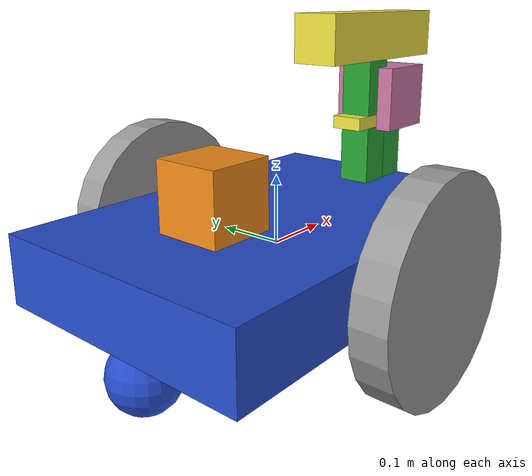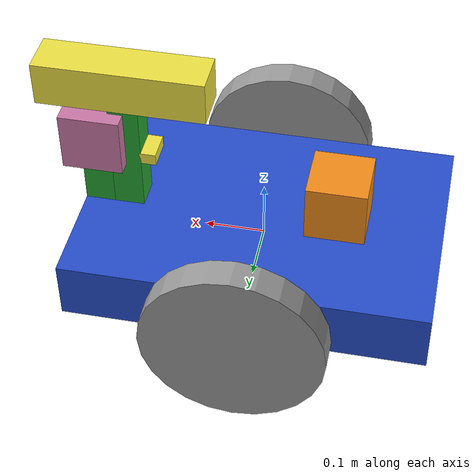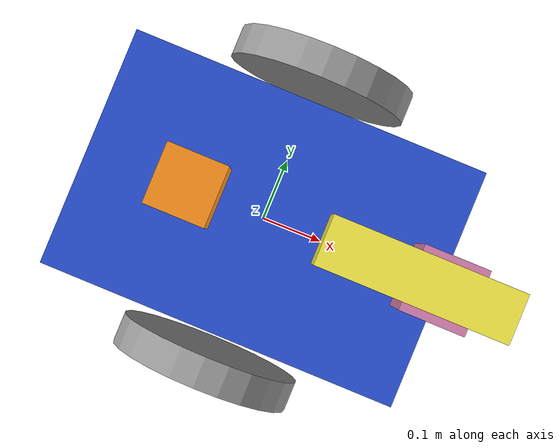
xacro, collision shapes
<?xml version='1.0'?>

<robot name="rtab_dumpster" xmlns:xacro="http://www.ros.org/wiki/xacro">

<!-- Configure the Gazebo differential drive controller plugin -->
<xacro:arg name="odometryTopic" default="odom" />
<xacro:arg name="odometryFrame" default="odom" />
<xacro:arg name="robotBaseFrame" default="robot_footprint" />
<xacro:arg name="diff_drive_publishTf" default="false" />
<xacro:arg name="diff_drive_publishOdomTF" default="false" />

<xacro:include filename="$(find rtab_dumpster)/urdf/rtab_dumpster.gazebo" />

<link name="robot_footprint"></link>

<!-- Chassis & caster wheels -->

  <joint name="robot_footprint_joint" type="fixed">
    <origin xyz="0 0 0" rpy="0 0 0" />
    <parent link="robot_footprint"/>
    <child link="chassis" />
  </joint>

  <link name='chassis'>
    <pose>0 0 0.15 0 0 0</pose>

    <inertial>
      <mass value="15.0"/>
      <origin xyz="0.0 0 0" rpy=" 0 0 0"/>
      <inertia
          ixx="0.1" ixy="0" ixz="0"
          iyy="0.1" iyz="0"
          izz="0.1"
      />
    </inertial>

    <collision name='collision'>
      <origin xyz="0.0 0 0" rpy=" 0 0 0"/>
      <geometry>
        <box size=".6 .4 .1"/>
      </geometry>
    </collision>

    <visual name='chassis_visual'>
      <origin xyz="0.0 0 0" rpy=" 0 0 0"/>
      <geometry>
        <box size=".6 .4 .1"/>
      </geometry>
    </visual>

    <collision name='back_caster_collision'>
      <origin xyz="-0.25 0 -0.1" rpy=" 0 0 0"/>
      <geometry>
        <sphere radius="0.0499"/>
      </geometry>
    </collision>

    <visual name='back_caster_visual'>
      <origin xyz="-0.25 0 -0.1" rpy=" 0 0 0"/>
      <geometry>
        <sphere radius="0.05"/>
      </geometry>
    </visual>

    <collision name='front_caster_collision'>
      <origin xyz="0.25 0 -0.1" rpy=" 0 0 0"/>
      <geometry>
        <sphere radius="0.0499"/>
      </geometry>
    </collision>

    <visual name='front_caster_visual'>
      <origin xyz="0.25 0 -0.1" rpy=" 0 0 0"/>
      <geometry>
        <sphere radius="0.05"/>
      </geometry>
    </visual>

  </link>

<!-- Dump box -->

    <joint name="dump_box_joint" type="fixed">
    <origin xyz="-0.025 0.0 0.1" rpy="1.57079 0 1.57079" /> <!-- X:front,back, Y:left,right, Z:up,down-->
    <parent link="chassis"/>
    <child link="dump_box" />
  </joint>

  <link name='dump_box'>
    <pose>0 0 0 0 0 0</pose>

    <inertial>
      <mass value="0.0"/>
      <origin xyz="0 0 -0.1" rpy=" 0 0 0"/>
      <inertia
          ixx="0.1" ixy="0" ixz="0"
          iyy="0.1" iyz="0"
          izz="0.1"
      />
    </inertial>

    <collision name='collision'>
      <origin xyz="0 0 -0.1" rpy=" 0 0 0"/>
      <geometry>
        <box size=".1 .1 .1"/>
      </geometry>
    </collision>

    <visual name='dump_box_visual'>
      <origin xyz="-0.355 -0.05 0.1" rpy=" 0 0 0"/>
        <geometry>
        <mesh filename="package://rtab_dumpster/meshes/dumper_bin.dae" scale="0.006 0.006 0.006"/>
        </geometry>
    </visual>
 </link>

<!-- kinect pole -->

<joint type="fixed" name="imu_joint">
    <origin xyz="0.2 0.0 0.05" rpy="0 0 0"/>
    <child link="imu_link"/>
    <parent link="chassis"/>
  </joint>

  <link name='imu_link'>
    <pose>0 0 0 0 0 0</pose>

    <inertial>
      <mass value="0.2"/>
      <origin xyz="0.0 0 0" rpy=" 0 0 0"/>
      <inertia
          ixx="0.01" ixy="0" ixz="0"
          iyy="0.01" iyz="0"
          izz="0.01"
      />
    </inertial>

    <collision name='collision'>
      <origin xyz="0 0.0 0.1" rpy=" 0 0 0"/>
      <geometry>
        <box size="0.05 0.05 0.02"/>
      </geometry>
    </collision>

    <visual name='kinect_pole_visual'>
      <origin xyz="0 0.0 0.1" rpy=" 0 0 0"/>
        <geometry>
        <box size="0.05 0.05 0.02"/>
        </geometry>
    </visual>

  </link>

<!-- kinect pole -->

<joint type="fixed" name="kinect_pole_joint">
    <origin xyz="0.225 0.0 0.05" rpy="0 0 0"/>
    <child link="kinect_pole"/>
    <parent link="chassis"/>
  </joint>

  <link name='kinect_pole'>
    <pose>0 0 0 0 0 0</pose>

    <inertial>
      <mass value="0.2"/>
      <origin xyz="0.0 0 0" rpy=" 0 0 0"/>
      <inertia
          ixx="0.1" ixy="0" ixz="0"
          iyy="0.1" iyz="0"
          izz="0.1"
      />
    </inertial>

    <collision name='collision'>
      <origin xyz="0 0.0 0.1" rpy=" 0 0 0"/>
      <geometry>
        <box size="0.05 0.05 0.2"/>
      </geometry>
    </collision>

    <visual name='kinect_pole_visual'>
      <origin xyz="0 0.0 0.1" rpy=" 0 0 0"/>
        <geometry>
        <box size="0.05 0.05 0.2"/>
        </geometry>
    </visual>

  </link>

<!-- laser pole -->

<joint type="fixed" name="laser_pole_joint">
    <origin xyz="0.275 0.0 0.05" rpy="0 0 0"/>
    <child link="laser_pole"/>
    <parent link="chassis"/>
  </joint>

  <link name='laser_pole'>
    <pose>0 0 0 0 0 0</pose>

    <inertial>
      <mass value="0.2"/>
      <origin xyz="0.0 0 0" rpy=" 0 0 0"/>
      <inertia
          ixx="0.1" ixy="0" ixz="0"
          iyy="0.1" iyz="0"
          izz="0.1"
      />
    </inertial>

    <collision name='collision'>
      <origin xyz="0 0.0 0.05" rpy=" 0 0 0"/>
      <geometry>
        <box size="0.05 0.05 0.1"/>
      </geometry>
    </collision>

    <visual name='laser_pole_visual'>
      <origin xyz="0 0 0.05" rpy=" 0 0 0"/>
        <geometry>
        <box size="0.05 0.05 0.1"/>
        </geometry>
    </visual>

  </link>

<!-- Wheels -->

<joint type="continuous" name="left_wheel_hinge">
    <origin xyz="0 0.25 0" rpy="0 0 0"/>
    <child link="left_wheel"/>
    <parent link="chassis"/>
    <axis xyz="0 1 0" rpy="0 0 0"/>
    <limit effort="10000" velocity="1000"/>
    <dynamics damping="1.0" friction="1.0"/>
  </joint>

<link name='left_wheel'>
    <pose>0 0 0.15 0 0 0</pose>

    <inertial>
      <mass value="5.0"/>
      <origin xyz="0.0 0 0" rpy=" 0 1.5707 1.5707"/>
      <inertia
          ixx="0.1" ixy="0" ixz="0"
          iyy="0.1" iyz="0"
          izz="0.1"
      />
    </inertial>

    <collision name='left_wheel_collision'>
      <origin xyz="0.0 0 0" rpy=" 0 1.5707 1.5707"/>
      <geometry>
        <cylinder radius="0.15" length="0.05"/>
      </geometry>
    </collision>

    <visual name='left_wheel_visual'>
      <origin xyz="0.0 0 0" rpy=" 0 1.5707 1.5707"/>
      <geometry>
        <cylinder radius="0.15" length="0.05"/>
      </geometry>
    </visual>
  </link>

<joint type="continuous" name="right_wheel_hinge">
    <origin xyz="0 -0.25 0" rpy="0 0 0"/>
    <child link="right_wheel"/>
    <parent link="chassis"/>
    <axis xyz="0 1 0" rpy="0 0 0"/>
    <limit effort="10000" velocity="1000"/>
    <dynamics damping="1.0" friction="1.0"/>
  </joint>

<link name='right_wheel'>
    <pose>0 0 0.15 0 0 0</pose>

    <inertial>
      <mass value="5.0"/>
      <origin xyz="0.0 0 0" rpy=" 0 1.5707 1.5707"/>
      <inertia
          ixx="0.1" ixy="0" ixz="0"
          iyy="0.1" iyz="0"
          izz="0.1"
      />
    </inertial>

    <collision name='right_wheel_collision'>
      <origin xyz="0.0 0 0" rpy=" 0 1.5707 1.5707"/>
      <geometry>
        <cylinder radius="0.15" length="0.05"/>
      </geometry>
    </collision>

    <visual name='right_wheel_visual'>
      <origin xyz="0.0 0 0" rpy=" 0 1.5707 1.5707"/>
      <geometry>
        <cylinder radius="0.15" length="0.05"/>
      </geometry>
    </visual>
  </link>

<!-- Kinect Sensor -->
<xacro:include filename="$(find rtab_dumpster)/urdf/kinect.xacro"/>

<!-- Laser -->
<link name="hokuyo">
    <pose>0 0 0 0 0 0</pose>

    <inertial>
      <mass value="0.1"/>
      <origin xyz="0.0 0 0" rpy="0 0 0"/>
      <inertia
          ixx="0.0001" ixy="0" ixz="0"
          iyy="0.0001" iyz="0"
          izz="0.0001"
      />
    </inertial>

    <collision name='hokuyo_collision'>
      <origin xyz="0.0 0 0" rpy="0 0 0"/>
      <geometry>
        <box size="0.1 0.1 0.1"/>
      </geometry>
    </collision>

    <visual name='hokuyo_visual'>
      <origin xyz="0.0 0 0" rpy="0 0 0"/>
      <geometry>
         <mesh filename="package://rtab_dumpster/meshes/hokuyo.dae"/>
      </geometry>
    </visual>
  </link>

<joint type="fixed" name="hokuyo_joint">
    <origin xyz="0.0 0 0.135" rpy="0 0 0"/> <!-- set height relative to laser_pole -->
    <child link="hokuyo"/>
    <parent link="laser_pole"/>
  </joint>

</robot>

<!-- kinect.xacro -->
<robot name="sensor_kinect" xmlns:xacro="http://www.ros.org/wiki/xacro">

  <xacro:property name="M_PI" value="3.1415926535897931" />

  <xacro:property name="cam_px" value="0" />
  <xacro:property name="kinect_cam_py" value="0"/> <!-- distance of kinect base to surface to which it is fixed -->
  <xacro:property name="cam_pz" value="0" />

  <!-- change to make sure point cloud displayed in rviz is correctly alligned to world -->
  <xacro:property name="cam_or" value="1.57079" />
  <xacro:property name="cam_op" value="3.14159" />
  <xacro:property name="cam_oy" value="1.57079" />

  <joint name="kinect_joint" type="fixed">
    <!-- align kinect's base to the surface to which it is fixed -->
    <origin xyz="0 0 0.235" rpy="0 0 0"/> <!-- set height -->
    <parent link="kinect_pole"/>
    <child link="kinect_baselink"/>
  </joint>
  <link name="kinect_baselink"> <!-- link name must match the name of the reference in the .gazebo file -->
  </link>

    <joint name="camera_rgb_joint" type="fixed">
      <origin xyz="${cam_px} ${kinect_cam_py} ${cam_pz}" rpy="${cam_or} ${cam_op} ${cam_oy}"/>
      <parent link="kinect_baselink"/>
      <child link="camera_rgbd_frame" />
    </joint>
    <link name="camera_rgbd_frame"/>

    <joint name="camera_rgb_optical_joint" type="fixed">
      <origin xyz="0 0 0" rpy="${-M_PI/2} 0 ${-M_PI/2}" />
      <parent link="camera_rgbd_frame" />
      <child link="camera_rgb_optical_frame" />
    </joint>
    <link name="camera_rgb_optical_frame"/>

    <joint name="camera_mesh_joint" type="fixed">
      <origin xyz="0 ${-kinect_cam_py} 0" rpy="0 0 0"/>
      <parent link="camera_rgbd_frame"/>
      <child link="camera_mesh_link"/>
    </joint>
      <link name="camera_mesh_link">
      <visual>
      <!-- change to make sure mesh image is correctly rotated once depth could is rightly alligned -->
       <origin xyz="0 0 0" rpy="-1.57079 0 3.14159"/>
        <geometry>
         <mesh filename="package://rtab_dumpster/meshes/kinect.dae" scale="1.0 1.0 1.0"/>
        </geometry>
      </visual>
      <collision>
        <origin xyz="0 0 0" rpy="-1.57079 0 3.14159"/>
        <geometry>
          <box size="0.07271 0.27794 0.073"/>
        </geometry>
      </collision>
      <inertial>
        <mass value="0.564" />
        <origin xyz="0 0 0" />
        <inertia ixx="0.003881243" ixy="0.0" ixz="0.0"
                 iyy="0.000498940" iyz="0.0"
                 izz="0.003879257" />
      </inertial>
    </link>

<!-- The fixed joints & links below are usually published by static_transformers launched by the OpenNi launch files (real robot) -->
<!-- However, for Gazebo simulation we need them, so we add them here. (Don't publish them additionally on a real robot!) -->
  <joint name="camera_depth_joint" type="fixed">
    <origin xyz="0 ${2 * -kinect_cam_py} 0" rpy="0 0 0" />
    <parent link="camera_rgbd_frame" />
    <child link="camera_depth_frame" />
  </joint>
  <link name="camera_depth_frame"/>

  <joint name="camera_depth_optical_joint" type="fixed">
    <origin xyz="0 0 0" rpy="${-M_PI/2} 0 ${-M_PI/2}" />
    <parent link="camera_depth_frame" />
    <child link="camera_depth_optical_frame" />
  </joint>
  <link name="camera_depth_optical_frame"/>

</robot>
